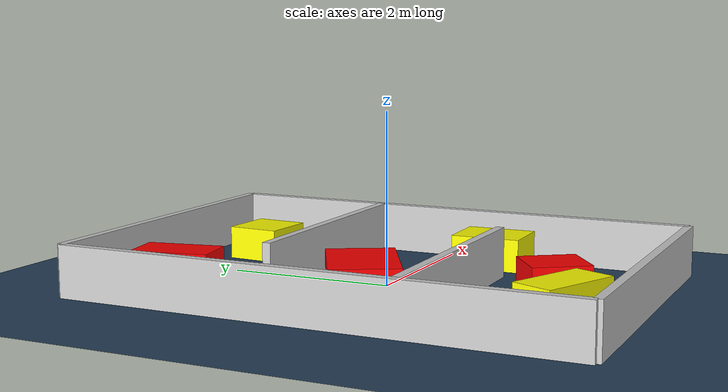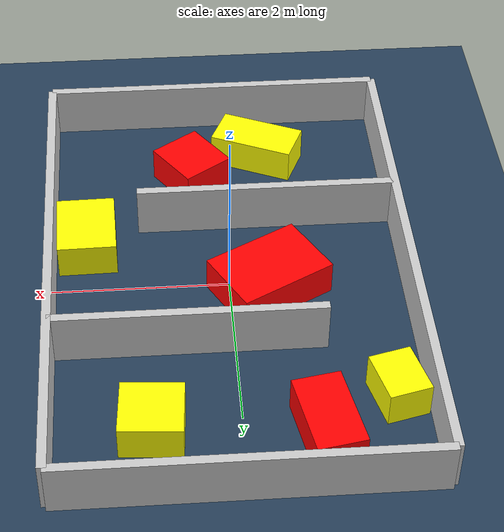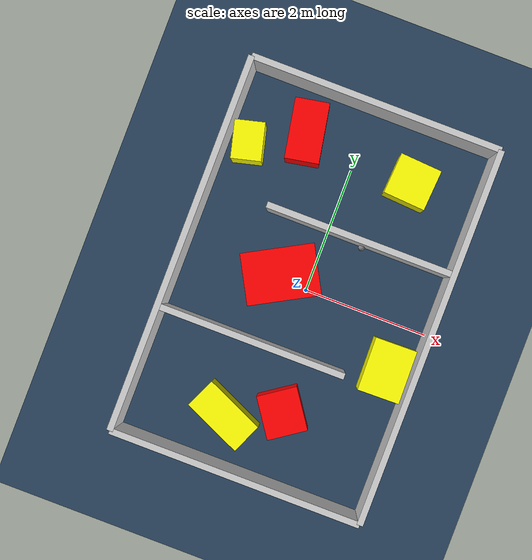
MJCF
<?xml version="1.0" ?>
<mujoco model="generated_environment">
  <option timestep="0.01" integrator="RK4" cone="elliptic"/>
  <default>
    <geom density="1"/>
  </default>
  <asset>
    <texture builtin="gradient" height="3072" rgb1="0.3 0.5 0.7" rgb2="0 0 0" type="skybox" width="512"/>
    <texture builtin="checker" height="300" mark="edge" markrgb="0.8 0.8 0.8" name="groundplane" rgb1="0.2 0.3 0.4" rgb2="0.1 0.2 0.3" type="2d" width="300"/>
    <material name="groundplane" reflectance="0.2" texrepeat="5 5" texture="groundplane" texuniform="true"/>
    <material name="robot" rgba="0.0 1.0 0.0 1"/>
  </asset>
  <worldbody>
    <light dir="0 0 -1" directional="true" pos="0 0 1.5"/>
    <geom condim="4" friction="1.0 0.005 0.001" material="groundplane" name="floor" size="0 0 0.05" type="plane"/>
    <body name="walls">
      <geom name="wall_1" condim="4" pos="-2.0 0.0 0.3" rgba="0.800000011920929 0.800000011920929 0.800000011920929 1.0" size="0.05 3.0 0.3" type="box"/>
      <geom name="wall_2" condim="4" pos="2.0 0.0 0.3" rgba="0.800000011920929 0.800000011920929 0.800000011920929 1.0" size="0.05 3.0 0.3" type="box"/>
      <geom name="wall_3" condim="4" pos="0.0 -3.0 0.3" rgba="0.800000011920929 0.800000011920929 0.800000011920929 1.0" size="2.0 0.05 0.3" type="box"/>
      <geom name="wall_4" condim="4" pos="0.0 3.0 0.3" rgba="0.800000011920929 0.800000011920929 0.800000011920929 1.0" size="2.0 0.05 0.3" type="box"/>
      <geom name="wall_5" condim="4" pos="-0.5 -1.0 0.3" rgba="0.800000011920929 0.800000011920929 0.800000011920929 1.0" size="1.5 0.05 0.3" type="box"/>
      <geom name="wall_6" condim="4" pos="0.5 1.0 0.3" rgba="0.800000011920929 0.800000011920929 0.800000011920929 1.0" size="1.5 0.05 0.3" type="box"/>
    </body>
    <body name="robot">
      <joint name="joint_x" type="slide" pos="0 0 0" axis="1 0 0"/>
      <joint name="joint_y" type="slide" pos="0 0 0" axis="0 1 0"/>
      <geom name="robot" type="sphere" pos="0.5709185035967645 0.925428593252704 0.2" size="0.05" mass="5." friction="1.0 0.005 0.0001" condim="4"/>
      <site name="sensor_ball"/>
    </body>
    <body name="obstacle_1_static">
      <geom name="obstacle_1_static" condim="4" pos="0.32560499368480134 -1.8772020675685586 0.2" euler="0 0 304.63728732255726" friction="1.0 0.005 0.001" rgba="1 0 0 1" size="0.3446170072612396 0.3174144570723133 0.2" type="box"/>
    </body>
    <body name="obstacle_2_movable">
      <geom name="obstacle_2_movable" condim="4" pos="0.937135366941843 2.124225963939944 0.2" euler="0 0 86.16922392463552" friction="1.0 0.005 0.001" rgba="1 1 0 1" size="0.32690879678268175 0.3347989495581856 0.2" type="box" mass="0.1"/>
      <joint type="free"/>
    </body>
    <body name="obstacle_3_static">
      <geom name="obstacle_3_static" condim="4" pos="-0.44274219817690774 0.09424519972053114 0.2" euler="0 0 118.8189890244522" friction="1.0 0.005 0.001" rgba="1 0 0 1" size="0.404084180810235 0.574122579497838 0.2" type="box"/>
    </body>
    <body name="obstacle_4_movable">
      <geom name="obstacle_4_movable" condim="4" pos="-0.496047471908297 -2.23119522045243 0.2" euler="0 0 65.92039489537751" friction="1.0 0.005 0.001" rgba="1 1 0 1" size="0.2538343700883881 0.4992997960364136 0.2" type="box" mass="0.1"/>
      <joint type="free"/>
    </body>
    <body name="obstacle_5_static">
      <geom name="obstacle_5_static" condim="4" pos="-0.8425865748886935 2.283771393022781 0.2" euler="0 0 190.27330107600224" friction="1.0 0.005 0.001" rgba="1 0 0 1" size="0.26779933380464904 0.4720379482943826 0.2" type="box"/>
    </body>
    <body name="obstacle_6_movable">
      <geom name="obstacle_6_movable" condim="4" pos="1.5942649998468377 -0.701381852903407 0.2" euler="0 0 271.16495673333577" friction="1.0 0.005 0.001" rgba="1 1 0 1" size="0.42359337136526687 0.33255933365303775 0.2" type="box" mass="0.1"/>
      <joint type="free"/>
    </body>
    <body name="obstacle_7_movable">
      <geom name="obstacle_7_movable" condim="4" pos="-1.632903841879688 1.8263460284894597 0.2" euler="0 0 14.209003109076757" friction="1.0 0.005 0.001" rgba="1 1 0 1" size="0.23603873100783532 0.3004247416367528 0.2" type="box" mass="0.1"/>
      <joint type="free"/>
    </body>
  </worldbody>
  <actuator>
    <motor name="actuator_x" joint="joint_x" gear="1" ctrlrange="-1 1"/>
    <motor name="actuator_y" joint="joint_y" gear="1" ctrlrange="-1 1"/>
  </actuator>
</mujoco>
